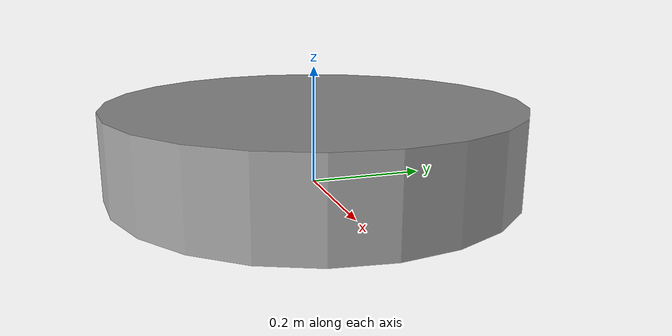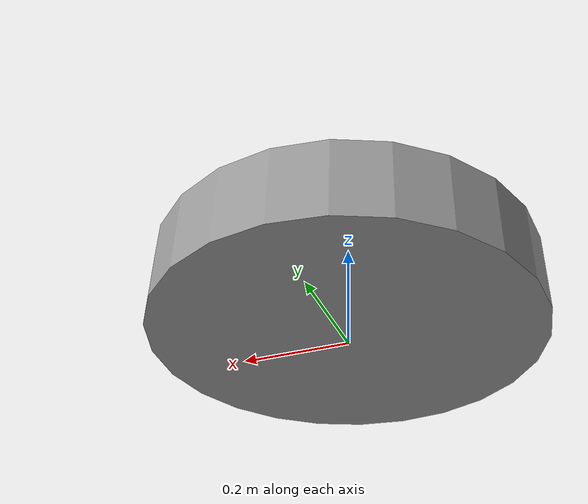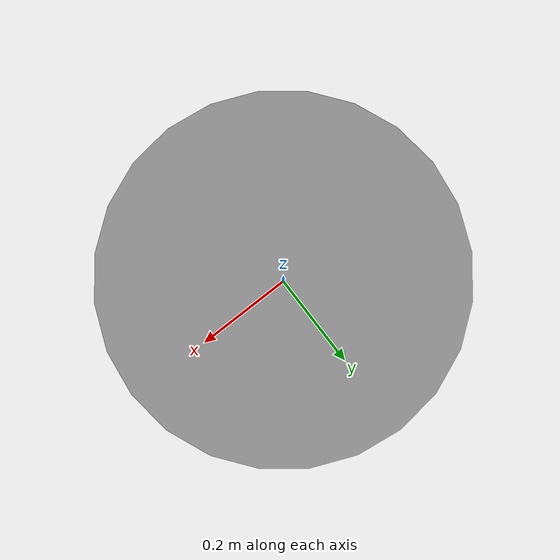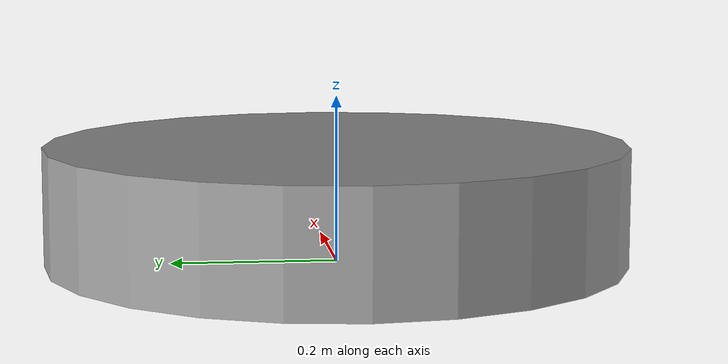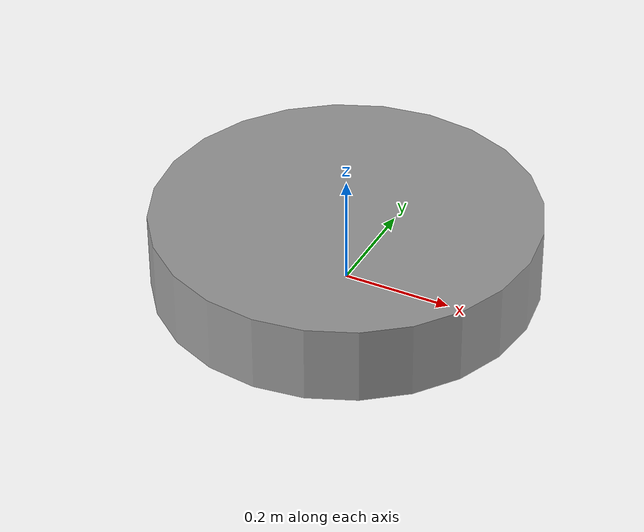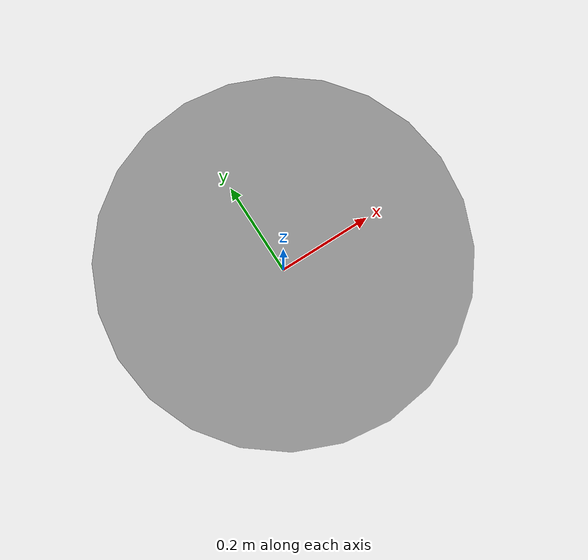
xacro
<?xml version="1.0"?>
<robot xmlns:xacro="http://www.ros.org/wiki/xacro">

 <!-- Dimensions from Create 3 -->
  <xacro:property name="base_radius" value="0.35" />
  <xacro:property name="base_height" value="0.1429" />
  <xacro:property name="wheel_radius" value="0.05" />
  <xacro:property name="wheel_length" value="0.05" />

  <!-- Cylindrical Body -->
  <link name="base_link">
    <visual>
      <geometry>
        <cylinder radius="${base_radius}" length="${base_height}" />
      </geometry>
      <origin xyz="0 0 ${base_height / 2.0}" rpy="0 0 0" />
      <material name="grey" />
    </visual>
    <collision>
      <geometry>
        <cylinder radius="${base_radius}" length="${base_height}" />
      </geometry>
      <origin xyz="0 0 ${base_height / 2.0}" rpy="0 0 0" />
    </collision>
    <xacro:cylinder_inertia m="4.0" r="${2*base_radius}" h="${2*base_height}"
                            xyz="0 0 ${base_height / 2.0}" rpy="0 0 0" />
  </link>

</robot>
